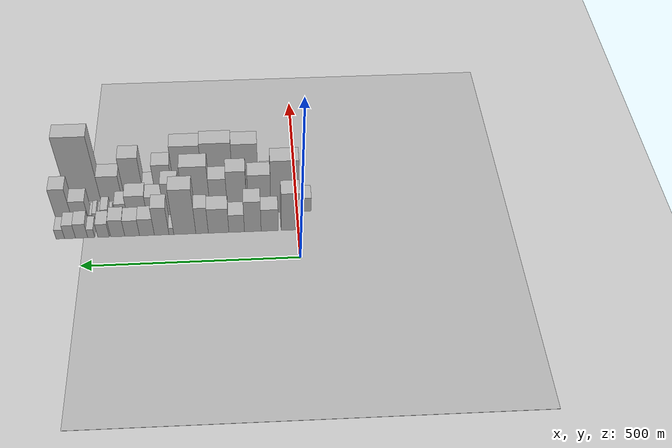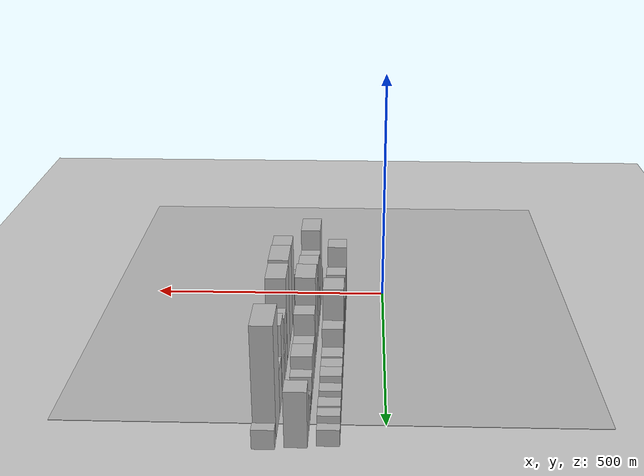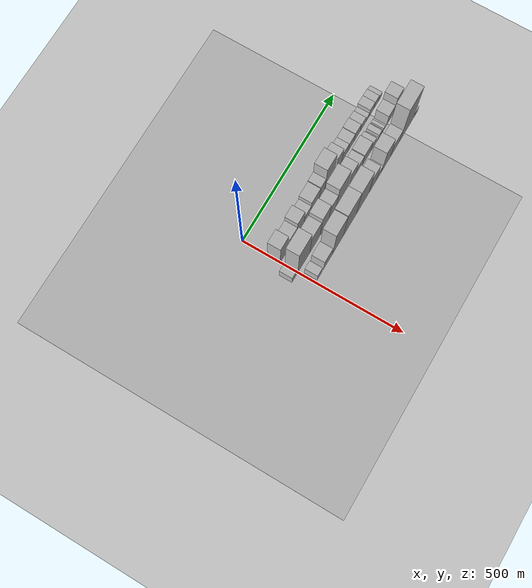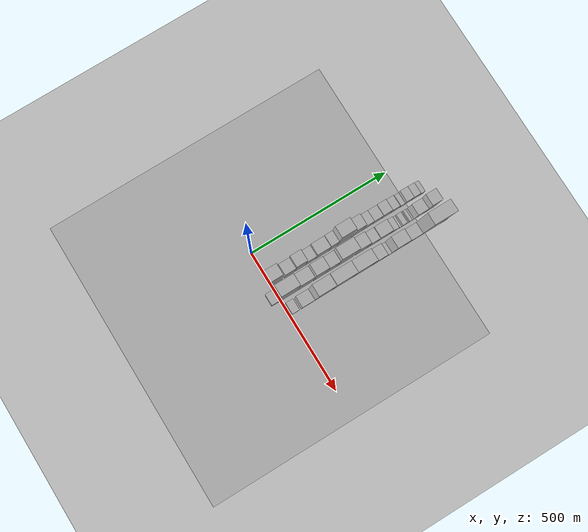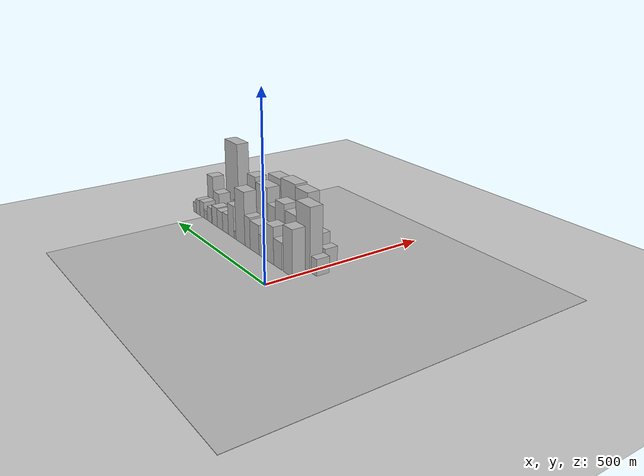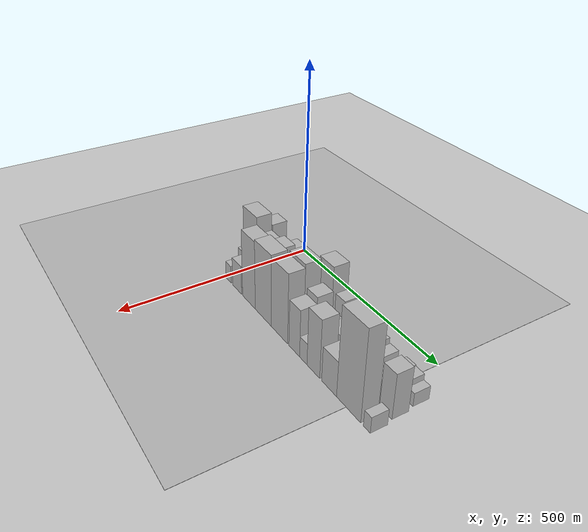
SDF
<sdf version="1.6">
 <world name="default">
  <include><name>ground_plane_1</name><uri>model://HANNAS_ground_plane</uri></include>
  <include>
   <name>ground_plane_2</name>
   <uri>model://HANNAS_ground_plane</uri>
   <pose>100 0 0  0 0 0</pose>
  </include>
  <model name="building_19">
   <static>1</static>
   <pose>100.0000 19.4768 0 0.000000 0.000000 0.000000</pose>
   <link name="link">
    <pose>0 0 66.00 0 0 0</pose>
    <collision name="collision"><geometry><box><size>40.0000 42.6460 132.0000</size></box></geometry></collision>
    <visual name="visual">
     <cast_shadows>0</cast_shadows>
     <geometry><box><size>40.0000 42.6460 132.0000</size></box></geometry>
     <material>
      <script>
       <uri>model://HANNAS_wall/materials/scripts</uri>
       <uri>model://HANNAS_wall/materials/textures</uri>
       <name>vrc/HANNAS_wall</name>
      </script>
     </material>
    </visual>
   </link>
  </model>
  <model name="building_20">
   <static>1</static>
   <pose>100.0000 67.7031 0 0.000000 0.000000 0.000000</pose>
   <link name="link">
    <pose>0 0 39.00 0 0 0</pose>
    <collision name="collision"><geometry><box><size>40.0000 39.8066 78.0000</size></box></geometry></collision>
    <visual name="visual">
     <cast_shadows>0</cast_shadows>
     <geometry><box><size>40.0000 39.8066 78.0000</size></box></geometry>
     <material>
      <script>
       <uri>model://HANNAS_wall/materials/scripts</uri>
       <uri>model://HANNAS_wall/materials/textures</uri>
       <name>vrc/HANNAS_wall</name>
      </script>
     </material>
    </visual>
   </link>
  </model>
  <model name="building_21">
   <static>1</static>
   <pose>100.0000 107.0174 0 0.000000 0.000000 0.000000</pose>
   <link name="link">
    <pose>0 0 54.00 0 0 0</pose>
    <collision name="collision"><geometry><box><size>40.0000 38.8219 108.0000</size></box></geometry></collision>
    <visual name="visual">
     <cast_shadows>0</cast_shadows>
     <geometry><box><size>40.0000 38.8219 108.0000</size></box></geometry>
     <material>
      <script>
       <uri>model://HANNAS_wall/materials/scripts</uri>
       <uri>model://HANNAS_wall/materials/textures</uri>
       <name>vrc/HANNAS_wall</name>
      </script>
     </material>
    </visual>
   </link>
  </model>
  <model name="building_22">
   <static>1</static>
   <pose>100.0000 144.5804 0 0.000000 0.000000 0.000000</pose>
   <link name="link">
    <pose>0 0 31.50 0 0 0</pose>
    <collision name="collision"><geometry><box><size>40.0000 36.3041 63.0000</size></box></geometry></collision>
    <visual name="visual">
     <cast_shadows>0</cast_shadows>
     <geometry><box><size>40.0000 36.3041 63.0000</size></box></geometry>
     <material>
      <script>
       <uri>model://HANNAS_wall/materials/scripts</uri>
       <uri>model://HANNAS_wall/materials/textures</uri>
       <name>vrc/HANNAS_wall</name>
      </script>
     </material>
    </visual>
   </link>
  </model>
  <model name="building_23">
   <static>1</static>
   <pose>100.0000 186.6478 0 0.000000 0.000000 0.000000</pose>
   <link name="link">
    <pose>0 0 43.50 0 0 0</pose>
    <collision name="collision"><geometry><box><size>40.0000 47.8308 87.0000</size></box></geometry></collision>
    <visual name="visual">
     <cast_shadows>0</cast_shadows>
     <geometry><box><size>40.0000 47.8308 87.0000</size></box></geometry>
     <material>
      <script>
       <uri>model://HANNAS_wall/materials/scripts</uri>
       <uri>model://HANNAS_wall/materials/textures</uri>
       <name>vrc/HANNAS_wall</name>
      </script>
     </material>
    </visual>
   </link>
  </model>
  <model name="building_24">
   <static>1</static>
   <pose>100.0000 225.0779 0 0.000000 0.000000 0.000000</pose>
   <link name="link">
    <pose>0 0 46.50 0 0 0</pose>
    <collision name="collision"><geometry><box><size>40.0000 29.0294 93.0000</size></box></geometry></collision>
    <visual name="visual">
     <cast_shadows>0</cast_shadows>
     <geometry><box><size>40.0000 29.0294 93.0000</size></box></geometry>
     <material>
      <script>
       <uri>model://HANNAS_wall/materials/scripts</uri>
       <uri>model://HANNAS_wall/materials/textures</uri>
       <name>vrc/HANNAS_wall</name>
      </script>
     </material>
    </visual>
   </link>
  </model>
  <model name="building_25">
   <static>1</static>
   <pose>100.0000 265.3183 0 0.000000 0.000000 0.000000</pose>
   <link name="link">
    <pose>0 0 79.50 0 0 0</pose>
    <collision name="collision"><geometry><box><size>40.0000 51.4513 159.0000</size></box></geometry></collision>
    <visual name="visual">
     <cast_shadows>0</cast_shadows>
     <geometry><box><size>40.0000 51.4513 159.0000</size></box></geometry>
     <material>
      <script>
       <uri>model://HANNAS_wall/materials/scripts</uri>
       <uri>model://HANNAS_wall/materials/textures</uri>
       <name>vrc/HANNAS_wall</name>
      </script>
     </material>
    </visual>
   </link>
  </model>
  <model name="building_26">
   <static>1</static>
   <pose>100.0000 296.5608 0 0.000000 0.000000 0.000000</pose>
   <link name="link">
    <pose>0 0 12.00 0 0 0</pose>
    <collision name="collision"><geometry><box><size>40.0000 11.0336 24.0000</size></box></geometry></collision>
    <visual name="visual">
     <cast_shadows>0</cast_shadows>
     <geometry><box><size>40.0000 11.0336 24.0000</size></box></geometry>
     <material>
      <script>
       <uri>model://HANNAS_wall/materials/scripts</uri>
       <uri>model://HANNAS_wall/materials/textures</uri>
       <name>vrc/HANNAS_wall</name>
      </script>
     </material>
    </visual>
   </link>
  </model>
  <model name="building_27">
   <static>1</static>
   <pose>100.0000 318.9848 0 0.000000 0.000000 0.000000</pose>
   <link name="link">
    <pose>0 0 49.50 0 0 0</pose>
    <collision name="collision"><geometry><box><size>40.0000 33.8144 99.0000</size></box></geometry></collision>
    <visual name="visual">
     <cast_shadows>0</cast_shadows>
     <geometry><box><size>40.0000 33.8144 99.0000</size></box></geometry>
     <material>
      <script>
       <uri>model://HANNAS_wall/materials/scripts</uri>
       <uri>model://HANNAS_wall/materials/textures</uri>
       <name>vrc/HANNAS_wall</name>
      </script>
     </material>
    </visual>
   </link>
  </model>
  <model name="building_28">
   <static>1</static>
   <pose>100.0000 353.1228 0 0.000000 0.000000 0.000000</pose>
   <link name="link">
    <pose>0 0 30.00 0 0 0</pose>
    <collision name="collision"><geometry><box><size>40.0000 34.4616 60.0000</size></box></geometry></collision>
    <visual name="visual">
     <cast_shadows>0</cast_shadows>
     <geometry><box><size>40.0000 34.4616 60.0000</size></box></geometry>
     <material>
      <script>
       <uri>model://HANNAS_wall/materials/scripts</uri>
       <uri>model://HANNAS_wall/materials/textures</uri>
       <name>vrc/HANNAS_wall</name>
      </script>
     </material>
    </visual>
   </link>
  </model>
  <model name="building_29">
   <static>1</static>
   <pose>100.0000 387.3583 0 0.000000 0.000000 0.000000</pose>
   <link name="link">
    <pose>0 0 28.50 0 0 0</pose>
    <collision name="collision"><geometry><box><size>40.0000 34.0094 57.0000</size></box></geometry></collision>
    <visual name="visual">
     <cast_shadows>0</cast_shadows>
     <geometry><box><size>40.0000 34.0094 57.0000</size></box></geometry>
     <material>
      <script>
       <uri>model://HANNAS_wall/materials/scripts</uri>
       <uri>model://HANNAS_wall/materials/textures</uri>
       <name>vrc/HANNAS_wall</name>
      </script>
     </material>
    </visual>
   </link>
  </model>
  <model name="building_30">
   <static>1</static>
   <pose>100.0000 420.7903 0 0.000000 0.000000 0.000000</pose>
   <link name="link">
    <pose>0 0 30.00 0 0 0</pose>
    <collision name="collision"><geometry><box><size>40.0000 32.8547 60.0000</size></box></geometry></collision>
    <visual name="visual">
     <cast_shadows>0</cast_shadows>
     <geometry><box><size>40.0000 32.8547 60.0000</size></box></geometry>
     <material>
      <script>
       <uri>model://HANNAS_wall/materials/scripts</uri>
       <uri>model://HANNAS_wall/materials/textures</uri>
       <name>vrc/HANNAS_wall</name>
      </script>
     </material>
    </visual>
   </link>
  </model>
  <model name="building_31">
   <static>1</static>
   <pose>100.0000 453.5304 0 0.000000 0.000000 0.000000</pose>
   <link name="link">
    <pose>0 0 24.00 0 0 0</pose>
    <collision name="collision"><geometry><box><size>40.0000 26.6255 48.0000</size></box></geometry></collision>
    <visual name="visual">
     <cast_shadows>0</cast_shadows>
     <geometry><box><size>40.0000 26.6255 48.0000</size></box></geometry>
     <material>
      <script>
       <uri>model://HANNAS_wall/materials/scripts</uri>
       <uri>model://HANNAS_wall/materials/textures</uri>
       <name>vrc/HANNAS_wall</name>
      </script>
     </material>
    </visual>
   </link>
  </model>
  <model name="building_32">
   <static>1</static>
   <pose>100.0000 481.9399 0 0.000000 0.000000 0.000000</pose>
   <link name="link">
    <pose>0 0 15.00 0 0 0</pose>
    <collision name="collision"><geometry><box><size>40.0000 16.1936 30.0000</size></box></geometry></collision>
    <visual name="visual">
     <cast_shadows>0</cast_shadows>
     <geometry><box><size>40.0000 16.1936 30.0000</size></box></geometry>
     <material>
      <script>
       <uri>model://HANNAS_wall/materials/scripts</uri>
       <uri>model://HANNAS_wall/materials/textures</uri>
       <name>vrc/HANNAS_wall</name>
      </script>
     </material>
    </visual>
   </link>
  </model>
  <model name="building_33">
   <static>1</static>
   <pose>100.0000 504.1276 0 0.000000 0.000000 0.000000</pose>
   <link name="link">
    <pose>0 0 25.50 0 0 0</pose>
    <collision name="collision"><geometry><box><size>40.0000 28.1818 51.0000</size></box></geometry></collision>
    <visual name="visual">
     <cast_shadows>0</cast_shadows>
     <geometry><box><size>40.0000 28.1818 51.0000</size></box></geometry>
     <material>
      <script>
       <uri>model://HANNAS_wall/materials/scripts</uri>
       <uri>model://HANNAS_wall/materials/textures</uri>
       <name>vrc/HANNAS_wall</name>
      </script>
     </material>
    </visual>
   </link>
  </model>
  <model name="building_34">
   <static>1</static>
   <pose>100.0000 530.7570 0 0.000000 0.000000 0.000000</pose>
   <link name="link">
    <pose>0 0 24.00 0 0 0</pose>
    <collision name="collision"><geometry><box><size>40.0000 25.0769 48.0000</size></box></geometry></collision>
    <visual name="visual">
     <cast_shadows>0</cast_shadows>
     <geometry><box><size>40.0000 25.0769 48.0000</size></box></geometry>
     <material>
      <script>
       <uri>model://HANNAS_wall/materials/scripts</uri>
       <uri>model://HANNAS_wall/materials/textures</uri>
       <name>vrc/HANNAS_wall</name>
      </script>
     </material>
    </visual>
   </link>
  </model>
  <model name="building_35">
   <static>1</static>
   <pose>100.0000 553.1585 0 0.000000 0.000000 0.000000</pose>
   <link name="link">
    <pose>0 0 16.50 0 0 0</pose>
    <collision name="collision"><geometry><box><size>40.0000 19.7261 33.0000</size></box></geometry></collision>
    <visual name="visual">
     <cast_shadows>0</cast_shadows>
     <geometry><box><size>40.0000 19.7261 33.0000</size></box></geometry>
     <material>
      <script>
       <uri>model://HANNAS_wall/materials/scripts</uri>
       <uri>model://HANNAS_wall/materials/textures</uri>
       <name>vrc/HANNAS_wall</name>
      </script>
     </material>
    </visual>
   </link>
  </model>
  <model name="building_49">
   <static>1</static>
   <pose>155.0000 -19.7719 0 0.000000 0.000000 0.000000</pose>
   <link name="link">
    <pose>0 0 24.00 0 0 0</pose>
    <collision name="collision"><geometry><box><size>40.0000 25.9594 48.0000</size></box></geometry></collision>
    <visual name="visual">
     <cast_shadows>0</cast_shadows>
     <geometry><box><size>40.0000 25.9594 48.0000</size></box></geometry>
     <material>
      <script>
       <uri>model://HANNAS_wall/materials/scripts</uri>
       <uri>model://HANNAS_wall/materials/textures</uri>
       <name>vrc/HANNAS_wall</name>
      </script>
     </material>
    </visual>
   </link>
  </model>
  <model name="building_50">
   <static>1</static>
   <pose>155.0000 30.6696 0 0.000000 0.000000 0.000000</pose>
   <link name="link">
    <pose>0 0 90.00 0 0 0</pose>
    <collision name="collision"><geometry><box><size>40.0000 64.9235 180.0000</size></box></geometry></collision>
    <visual name="visual">
     <cast_shadows>0</cast_shadows>
     <geometry><box><size>40.0000 64.9235 180.0000</size></box></geometry>
     <material>
      <script>
       <uri>model://HANNAS_wall/materials/scripts</uri>
       <uri>model://HANNAS_wall/materials/textures</uri>
       <name>vrc/HANNAS_wall</name>
      </script>
     </material>
    </visual>
   </link>
  </model>
  <model name="building_51">
   <static>1</static>
   <pose>155.0000 89.3085 0 0.000000 0.000000 0.000000</pose>
   <link name="link">
    <pose>0 0 67.50 0 0 0</pose>
    <collision name="collision"><geometry><box><size>40.0000 52.3544 135.0000</size></box></geometry></collision>
    <visual name="visual">
     <cast_shadows>0</cast_shadows>
     <geometry><box><size>40.0000 52.3544 135.0000</size></box></geometry>
     <material>
      <script>
       <uri>model://HANNAS_wall/materials/scripts</uri>
       <uri>model://HANNAS_wall/materials/textures</uri>
       <name>vrc/HANNAS_wall</name>
      </script>
     </material>
    </visual>
   </link>
  </model>
  <model name="building_52">
   <static>1</static>
   <pose>155.0000 142.1075 0 0.000000 0.000000 0.000000</pose>
   <link name="link">
    <pose>0 0 75.00 0 0 0</pose>
    <collision name="collision"><geometry><box><size>40.0000 45.2436 150.0000</size></box></geometry></collision>
    <visual name="visual">
     <cast_shadows>0</cast_shadows>
     <geometry><box><size>40.0000 45.2436 150.0000</size></box></geometry>
     <material>
      <script>
       <uri>model://HANNAS_wall/materials/scripts</uri>
       <uri>model://HANNAS_wall/materials/textures</uri>
       <name>vrc/HANNAS_wall</name>
      </script>
     </material>
    </visual>
   </link>
  </model>
  <model name="building_53">
   <static>1</static>
   <pose>155.0000 184.9532 0 0.000000 0.000000 0.000000</pose>
   <link name="link">
    <pose>0 0 63.00 0 0 0</pose>
    <collision name="collision"><geometry><box><size>40.0000 40.4479 126.0000</size></box></geometry></collision>
    <visual name="visual">
     <cast_shadows>0</cast_shadows>
     <geometry><box><size>40.0000 40.4479 126.0000</size></box></geometry>
     <material>
      <script>
       <uri>model://HANNAS_wall/materials/scripts</uri>
       <uri>model://HANNAS_wall/materials/textures</uri>
       <name>vrc/HANNAS_wall</name>
      </script>
     </material>
    </visual>
   </link>
  </model>
  <model name="building_54">
   <static>1</static>
   <pose>155.0000 236.0386 0 0.000000 0.000000 0.000000</pose>
   <link name="link">
    <pose>0 0 85.50 0 0 0</pose>
    <collision name="collision"><geometry><box><size>40.0000 61.7230 171.0000</size></box></geometry></collision>
    <visual name="visual">
     <cast_shadows>0</cast_shadows>
     <geometry><box><size>40.0000 61.7230 171.0000</size></box></geometry>
     <material>
      <script>
       <uri>model://HANNAS_wall/materials/scripts</uri>
       <uri>model://HANNAS_wall/materials/textures</uri>
       <name>vrc/HANNAS_wall</name>
      </script>
     </material>
    </visual>
   </link>
  </model>
  <model name="building_55">
   <static>1</static>
   <pose>155.0000 295.0903 0 0.000000 0.000000 0.000000</pose>
   <link name="link">
    <pose>0 0 58.50 0 0 0</pose>
    <collision name="collision"><geometry><box><size>40.0000 38.3803 117.0000</size></box></geometry></collision>
    <visual name="visual">
     <cast_shadows>0</cast_shadows>
     <geometry><box><size>40.0000 38.3803 117.0000</size></box></geometry>
     <material>
      <script>
       <uri>model://HANNAS_wall/materials/scripts</uri>
       <uri>model://HANNAS_wall/materials/textures</uri>
       <name>vrc/HANNAS_wall</name>
      </script>
     </material>
    </visual>
   </link>
  </model>
  <model name="building_56">
   <static>1</static>
   <pose>155.0000 334.7035 0 0.000000 0.000000 0.000000</pose>
   <link name="link">
    <pose>0 0 36.00 0 0 0</pose>
    <collision name="collision"><geometry><box><size>40.0000 40.8461 72.0000</size></box></geometry></collision>
    <visual name="visual">
     <cast_shadows>0</cast_shadows>
     <geometry><box><size>40.0000 40.8461 72.0000</size></box></geometry>
     <material>
      <script>
       <uri>model://HANNAS_wall/materials/scripts</uri>
       <uri>model://HANNAS_wall/materials/textures</uri>
       <name>vrc/HANNAS_wall</name>
      </script>
     </material>
    </visual>
   </link>
  </model>
  <model name="building_57">
   <static>1</static>
   <pose>155.0000 378.2156 0 0.000000 0.000000 0.000000</pose>
   <link name="link">
    <pose>0 0 39.00 0 0 0</pose>
    <collision name="collision"><geometry><box><size>40.0000 46.1779 78.0000</size></box></geometry></collision>
    <visual name="visual">
     <cast_shadows>0</cast_shadows>
     <geometry><box><size>40.0000 46.1779 78.0000</size></box></geometry>
     <material>
      <script>
       <uri>model://HANNAS_wall/materials/scripts</uri>
       <uri>model://HANNAS_wall/materials/textures</uri>
       <name>vrc/HANNAS_wall</name>
      </script>
     </material>
    </visual>
   </link>
  </model>
  <model name="building_58">
   <static>1</static>
   <pose>155.0000 414.4631 0 0.000000 0.000000 0.000000</pose>
   <link name="link">
    <pose>0 0 25.50 0 0 0</pose>
    <collision name="collision"><geometry><box><size>40.0000 26.3171 51.0000</size></box></geometry></collision>
    <visual name="visual">
     <cast_shadows>0</cast_shadows>
     <geometry><box><size>40.0000 26.3171 51.0000</size></box></geometry>
     <material>
      <script>
       <uri>model://HANNAS_wall/materials/scripts</uri>
       <uri>model://HANNAS_wall/materials/textures</uri>
       <name>vrc/HANNAS_wall</name>
      </script>
     </material>
    </visual>
   </link>
  </model>
  <model name="building_59">
   <static>1</static>
   <pose>155.0000 441.2946 0 0.000000 0.000000 0.000000</pose>
   <link name="link">
    <pose>0 0 7.50 0 0 0</pose>
    <collision name="collision"><geometry><box><size>40.0000 7.3461 15.0000</size></box></geometry></collision>
    <visual name="visual">
     <cast_shadows>0</cast_shadows>
     <geometry><box><size>40.0000 7.3461 15.0000</size></box></geometry>
     <material>
      <script>
       <uri>model://HANNAS_wall/materials/scripts</uri>
       <uri>model://HANNAS_wall/materials/textures</uri>
       <name>vrc/HANNAS_wall</name>
      </script>
     </material>
    </visual>
   </link>
  </model>
  <model name="building_60">
   <static>1</static>
   <pose>155.0000 453.7834 0 0.000000 0.000000 0.000000</pose>
   <link name="link">
    <pose>0 0 16.50 0 0 0</pose>
    <collision name="collision"><geometry><box><size>40.0000 17.6314 33.0000</size></box></geometry></collision>
    <visual name="visual">
     <cast_shadows>0</cast_shadows>
     <geometry><box><size>40.0000 17.6314 33.0000</size></box></geometry>
     <material>
      <script>
       <uri>model://HANNAS_wall/materials/scripts</uri>
       <uri>model://HANNAS_wall/materials/textures</uri>
       <name>vrc/HANNAS_wall</name>
      </script>
     </material>
    </visual>
   </link>
  </model>
  <model name="building_61">
   <static>1</static>
   <pose>155.0000 466.3862 0 0.000000 0.000000 0.000000</pose>
   <link name="link">
    <pose>0 0 9.00 0 0 0</pose>
    <collision name="collision"><geometry><box><size>40.0000 7.5742 18.0000</size></box></geometry></collision>
    <visual name="visual">
     <cast_shadows>0</cast_shadows>
     <geometry><box><size>40.0000 7.5742 18.0000</size></box></geometry>
     <material>
      <script>
       <uri>model://HANNAS_wall/materials/scripts</uri>
       <uri>model://HANNAS_wall/materials/textures</uri>
       <name>vrc/HANNAS_wall</name>
      </script>
     </material>
    </visual>
   </link>
  </model>
  <model name="building_62">
   <static>1</static>
   <pose>155.0000 478.1591 0 0.000000 0.000000 0.000000</pose>
   <link name="link">
    <pose>0 0 10.50 0 0 0</pose>
    <collision name="collision"><geometry><box><size>40.0000 9.9715 21.0000</size></box></geometry></collision>
    <visual name="visual">
     <cast_shadows>0</cast_shadows>
     <geometry><box><size>40.0000 9.9715 21.0000</size></box></geometry>
     <material>
      <script>
       <uri>model://HANNAS_wall/materials/scripts</uri>
       <uri>model://HANNAS_wall/materials/textures</uri>
       <name>vrc/HANNAS_wall</name>
      </script>
     </material>
    </visual>
   </link>
  </model>
  <model name="building_63">
   <static>1</static>
   <pose>155.0000 486.7373 0 0.000000 0.000000 0.000000</pose>
   <link name="link">
    <pose>0 0 7.50 0 0 0</pose>
    <collision name="collision"><geometry><box><size>40.0000 7.1850 15.0000</size></box></geometry></collision>
    <visual name="visual">
     <cast_shadows>0</cast_shadows>
     <geometry><box><size>40.0000 7.1850 15.0000</size></box></geometry>
     <material>
      <script>
       <uri>model://HANNAS_wall/materials/scripts</uri>
       <uri>model://HANNAS_wall/materials/textures</uri>
       <name>vrc/HANNAS_wall</name>
      </script>
     </material>
    </visual>
   </link>
  </model>
  <model name="building_64">
   <static>1</static>
   <pose>155.0000 512.4145 0 0.000000 0.000000 0.000000</pose>
   <link name="link">
    <pose>0 0 33.00 0 0 0</pose>
    <collision name="collision"><geometry><box><size>40.0000 38.1694 66.0000</size></box></geometry></collision>
    <visual name="visual">
     <cast_shadows>0</cast_shadows>
     <geometry><box><size>40.0000 38.1694 66.0000</size></box></geometry>
     <material>
      <script>
       <uri>model://HANNAS_wall/materials/scripts</uri>
       <uri>model://HANNAS_wall/materials/textures</uri>
       <name>vrc/HANNAS_wall</name>
      </script>
     </material>
    </visual>
   </link>
  </model>
  <model name="building_65">
   <static>1</static>
   <pose>155.0000 550.0175 0 0.000000 0.000000 0.000000</pose>
   <link name="link">
    <pose>0 0 55.50 0 0 0</pose>
    <collision name="collision"><geometry><box><size>40.0000 37.0367 111.0000</size></box></geometry></collision>
    <visual name="visual">
     <cast_shadows>0</cast_shadows>
     <geometry><box><size>40.0000 37.0367 111.0000</size></box></geometry>
     <material>
      <script>
       <uri>model://HANNAS_wall/materials/scripts</uri>
       <uri>model://HANNAS_wall/materials/textures</uri>
       <name>vrc/HANNAS_wall</name>
      </script>
     </material>
    </visual>
   </link>
  </model>
  <model name="building_80">
   <static>1</static>
   <pose>210.0000 20.0768 0 0.000000 0.000000 0.000000</pose>
   <link name="link">
    <pose>0 0 24.00 0 0 0</pose>
    <collision name="collision"><geometry><box><size>40.0000 26.4468 48.0000</size></box></geometry></collision>
    <visual name="visual">
     <cast_shadows>0</cast_shadows>
     <geometry><box><size>40.0000 26.4468 48.0000</size></box></geometry>
     <material>
      <script>
       <uri>model://HANNAS_wall/materials/scripts</uri>
       <uri>model://HANNAS_wall/materials/textures</uri>
       <name>vrc/HANNAS_wall</name>
      </script>
     </material>
    </visual>
   </link>
  </model>
  <model name="building_81">
   <static>1</static>
   <pose>210.0000 63.4367 0 0.000000 0.000000 0.000000</pose>
   <link name="link">
    <pose>0 0 39.00 0 0 0</pose>
    <collision name="collision"><geometry><box><size>40.0000 44.2729 78.0000</size></box></geometry></collision>
    <visual name="visual">
     <cast_shadows>0</cast_shadows>
     <geometry><box><size>40.0000 44.2729 78.0000</size></box></geometry>
     <material>
      <script>
       <uri>model://HANNAS_wall/materials/scripts</uri>
       <uri>model://HANNAS_wall/materials/textures</uri>
       <name>vrc/HANNAS_wall</name>
      </script>
     </material>
    </visual>
   </link>
  </model>
  <model name="building_82">
   <static>1</static>
   <pose>210.0000 120.5103 0 0.000000 0.000000 0.000000</pose>
   <link name="link">
    <pose>0 0 90.00 0 0 0</pose>
    <collision name="collision"><geometry><box><size>40.0000 59.8743 180.0000</size></box></geometry></collision>
    <visual name="visual">
     <cast_shadows>0</cast_shadows>
     <geometry><box><size>40.0000 59.8743 180.0000</size></box></geometry>
     <material>
      <script>
       <uri>model://HANNAS_wall/materials/scripts</uri>
       <uri>model://HANNAS_wall/materials/textures</uri>
       <name>vrc/HANNAS_wall</name>
      </script>
     </material>
    </visual>
   </link>
  </model>
  <model name="building_83">
   <static>1</static>
   <pose>210.0000 186.1172 0 0.000000 0.000000 0.000000</pose>
   <link name="link">
    <pose>0 0 93.00 0 0 0</pose>
    <collision name="collision"><geometry><box><size>40.0000 71.3395 186.0000</size></box></geometry></collision>
    <visual name="visual">
     <cast_shadows>0</cast_shadows>
     <geometry><box><size>40.0000 71.3395 186.0000</size></box></geometry>
     <material>
      <script>
       <uri>model://HANNAS_wall/materials/scripts</uri>
       <uri>model://HANNAS_wall/materials/textures</uri>
       <name>vrc/HANNAS_wall</name>
      </script>
     </material>
    </visual>
   </link>
  </model>
  <model name="building_84">
   <static>1</static>
   <pose>210.0000 255.7798 0 0.000000 0.000000 0.000000</pose>
   <link name="link">
    <pose>0 0 90.00 0 0 0</pose>
    <collision name="collision"><geometry><box><size>40.0000 67.9859 180.0000</size></box></geometry></collision>
    <visual name="visual">
     <cast_shadows>0</cast_shadows>
     <geometry><box><size>40.0000 67.9859 180.0000</size></box></geometry>
     <material>
      <script>
       <uri>model://HANNAS_wall/materials/scripts</uri>
       <uri>model://HANNAS_wall/materials/textures</uri>
       <name>vrc/HANNAS_wall</name>
      </script>
     </material>
    </visual>
   </link>
  </model>
  <model name="building_85">
   <static>1</static>
   <pose>210.0000 315.6380 0 0.000000 0.000000 0.000000</pose>
   <link name="link">
    <pose>0 0 60.00 0 0 0</pose>
    <collision name="collision"><geometry><box><size>40.0000 41.7304 120.0000</size></box></geometry></collision>
    <visual name="visual">
     <cast_shadows>0</cast_shadows>
     <geometry><box><size>40.0000 41.7304 120.0000</size></box></geometry>
     <material>
      <script>
       <uri>model://HANNAS_wall/materials/scripts</uri>
       <uri>model://HANNAS_wall/materials/textures</uri>
       <name>vrc/HANNAS_wall</name>
      </script>
     </material>
    </visual>
   </link>
  </model>
  <model name="building_86">
   <static>1</static>
   <pose>210.0000 350.5094 0 0.000000 0.000000 0.000000</pose>
   <link name="link">
    <pose>0 0 27.00 0 0 0</pose>
    <collision name="collision"><geometry><box><size>40.0000 28.0124 54.0000</size></box></geometry></collision>
    <visual name="visual">
     <cast_shadows>0</cast_shadows>
     <geometry><box><size>40.0000 28.0124 54.0000</size></box></geometry>
     <material>
      <script>
       <uri>model://HANNAS_wall/materials/scripts</uri>
       <uri>model://HANNAS_wall/materials/textures</uri>
       <name>vrc/HANNAS_wall</name>
      </script>
     </material>
    </visual>
   </link>
  </model>
  <model name="building_87">
   <static>1</static>
   <pose>210.0000 387.6053 0 0.000000 0.000000 0.000000</pose>
   <link name="link">
    <pose>0 0 73.50 0 0 0</pose>
    <collision name="collision"><geometry><box><size>40.0000 46.1794 147.0000</size></box></geometry></collision>
    <visual name="visual">
     <cast_shadows>0</cast_shadows>
     <geometry><box><size>40.0000 46.1794 147.0000</size></box></geometry>
     <material>
      <script>
       <uri>model://HANNAS_wall/materials/scripts</uri>
       <uri>model://HANNAS_wall/materials/textures</uri>
       <name>vrc/HANNAS_wall</name>
      </script>
     </material>
    </visual>
   </link>
  </model>
  <model name="building_88">
   <static>1</static>
   <pose>210.0000 443.1934 0 0.000000 0.000000 0.000000</pose>
   <link name="link">
    <pose>0 0 43.50 0 0 0</pose>
    <collision name="collision"><geometry><box><size>40.0000 50.9969 87.0000</size></box></geometry></collision>
    <visual name="visual">
     <cast_shadows>0</cast_shadows>
     <geometry><box><size>40.0000 50.9969 87.0000</size></box></geometry>
     <material>
      <script>
       <uri>model://HANNAS_wall/materials/scripts</uri>
       <uri>model://HANNAS_wall/materials/textures</uri>
       <name>vrc/HANNAS_wall</name>
      </script>
     </material>
    </visual>
   </link>
  </model>
  <model name="building_89">
   <static>1</static>
   <pose>210.0000 507.3222 0 0.000000 0.000000 0.000000</pose>
   <link name="link">
    <pose>0 0 111.00 0 0 0</pose>
    <collision name="collision"><geometry><box><size>40.0000 77.2607 222.0000</size></box></geometry></collision>
    <visual name="visual">
     <cast_shadows>0</cast_shadows>
     <geometry><box><size>40.0000 77.2607 222.0000</size></box></geometry>
     <material>
      <script>
       <uri>model://HANNAS_wall/materials/scripts</uri>
       <uri>model://HANNAS_wall/materials/textures</uri>
       <name>vrc/HANNAS_wall</name>
      </script>
     </material>
    </visual>
   </link>
  </model>
  <model name="building_90">
   <static>1</static>
   <pose>210.0000 564.3779 0 0.000000 0.000000 0.000000</pose>
   <link name="link">
    <pose>0 0 19.50 0 0 0</pose>
    <collision name="collision"><geometry><box><size>40.0000 20.8507 39.0000</size></box></geometry></collision>
    <visual name="visual">
     <cast_shadows>0</cast_shadows>
     <geometry><box><size>40.0000 20.8507 39.0000</size></box></geometry>
     <material>
      <script>
       <uri>model://HANNAS_wall/materials/scripts</uri>
       <uri>model://HANNAS_wall/materials/textures</uri>
       <name>vrc/HANNAS_wall</name>
      </script>
     </material>
    </visual>
   </link>
  </model>
 </world>
</sdf>
